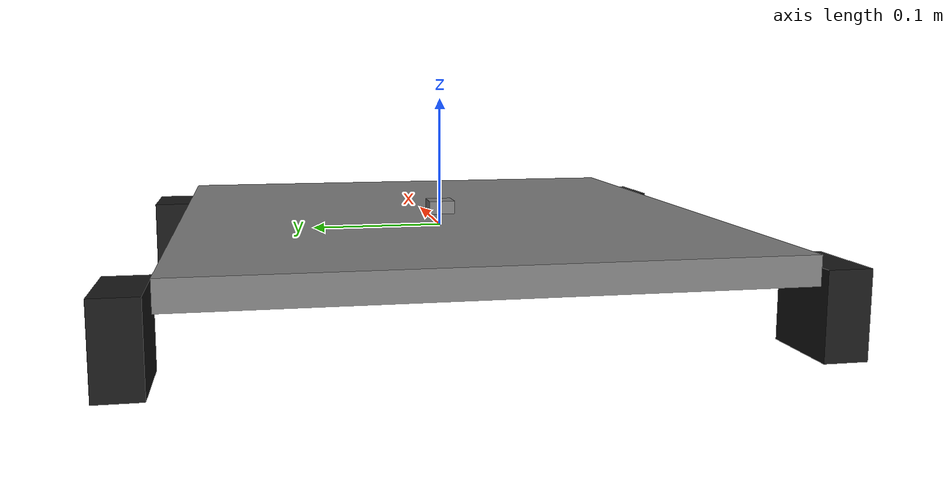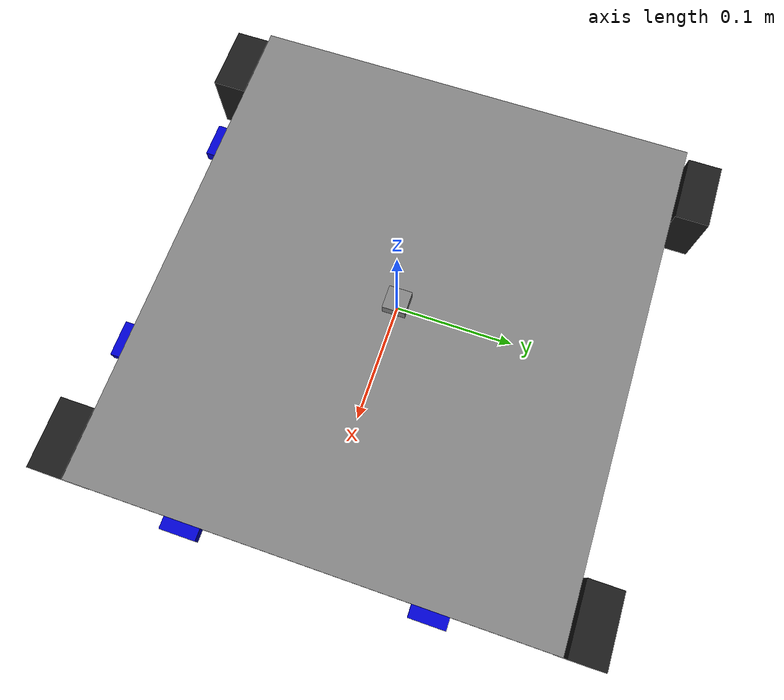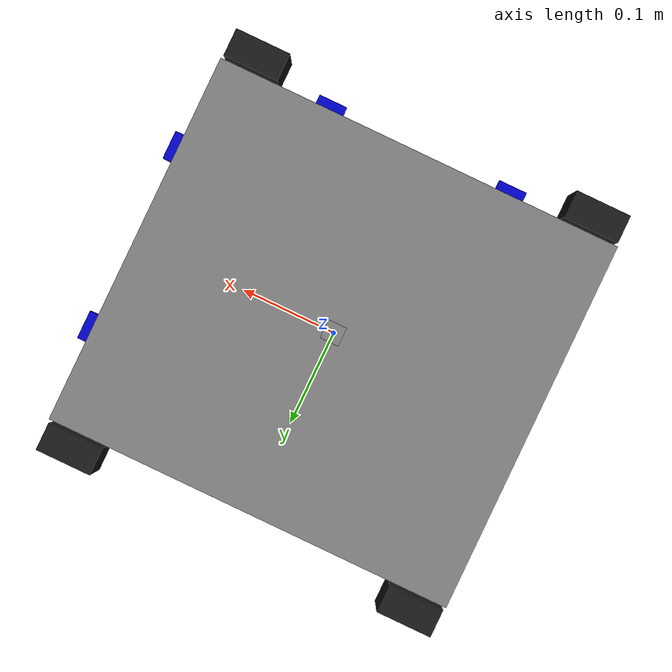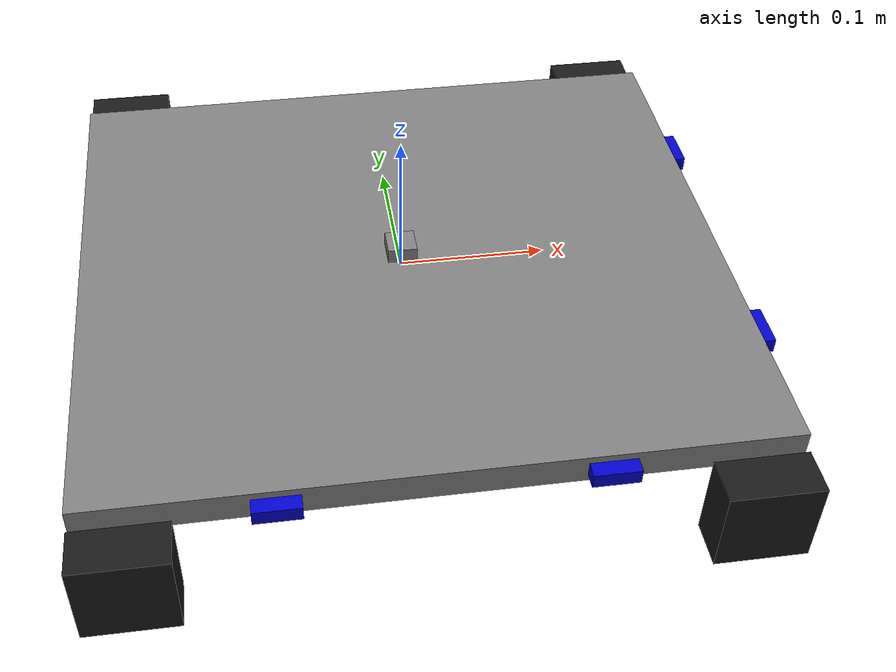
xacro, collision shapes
<?xml version="1.0"?>
<robot xmlns:xacro="http://www.ros.org/wiki/xacro" name="flat_bot">
    <xacro:include filename="common.xacro"/>
    <xacro:include filename="body/flat_bot.xacro"/>
    <xacro:flat_bot/>

    <xacro:include filename="gazebo.xacro"/>

    <xacro:luna prefix="luna_1"/>
    <xacro:luna prefix="luna_2"/>
    <xacro:luna prefix="luna_3"/>
    <xacro:luna prefix="luna_4"/>

</robot>

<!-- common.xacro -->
<robot xmlns:xacro="http://www.ros.org/wiki/xacro" name="r2">

<material name="darkgrey">
    <color rgba="0.1 0.1 0.1 1.0" />
</material>
<material name="grey">
    <color rgba="0.5 0.5 0.5 1.0" />
</material>
<material name="blue">
    <color rgba="0.0 0.0 0.8 1.0" />
</material>

<material name="silver">
    <color rgba="0.700 0.700 0.700 1.000"/>
  </material>

  <material name="black">
    <color rgba="0 0 0 1"/>
  </material>

  <gazebo reference="base_link">
    <material>Gazebo/Grey</material>
  </gazebo>

  <gazebo reference="wheel_fl_1">
    <material>Gazebo/Black</material>
  </gazebo>

  <gazebo reference="wheel_bl_1">
    <material>Gazebo/Black</material>
  </gazebo>

  <gazebo reference="wheel_fr_1">
    <material>Gazebo/Black</material>
  </gazebo>

  <gazebo reference="wheel_br_1">
    <material>Gazebo/Black</material>
  </gazebo>

  <gazebo reference="lidar_lf_1">
    <material>Gazebo/Silver</material>
  </gazebo>

  <gazebo reference="lidar_lb_1">
    <material>Gazebo/Silver</material>
  </gazebo>

  <gazebo reference="luna_fl">
    <material>Gazebo/Silver</material>
  </gazebo>

  <gazebo reference="luna_fr">
    <material>Gazebo/Silver</material>
  </gazebo>

  <gazebo reference="luna_rf">
    <material>Gazebo/Silver</material>
  </gazebo>

  <gazebo reference="luna_rb">
    <material>Gazebo/Silver</material>
  </gazebo>

  <gazebo reference="lift_1">
    <material>Gazebo/Turquoise</material>
  </gazebo>

  <gazebo reference="claw_left_1">
    <material>Gazebo/Turquoise</material>
  </gazebo>

  <gazebo reference="claw_right_1">
    <material>Gazebo/Turquoise</material>
  </gazebo>

<xacro:property name="M_PI" value="3.1415926535897931" />
<xacro:property name="PI" value="3.1415926535897931" />
<xacro:property name="M_PI_2" value="1.570796327" />
<xacro:property name="DEG_TO_RAD" value="0.017453293" />

<xacro:property name="base_size_x" value="0.44" />
<xacro:property name="base_size_y" value="0.40" />
<xacro:property name="base_size_z" value="0.02" />
<xacro:property name="base_mass" value="1.000" />

<xacro:property name="wheel_radius" value="0.03" />
<xacro:property name="wheel_width" value="0.03" />
<xacro:property name="wheel_offset_x" value="0.19"/>
<xacro:property name="wheel_offset_y" value="0.22"/>
<xacro:property name="wheel_offset_z" value="-0.03"/>
<xacro:property name="wheel_mass" value="0.500"/>

<xacro:property name="sensor_size_x" value="0.02" />
<xacro:property name="sensor_size_y" value="0.03" />
<xacro:property name="sensor_size_z" value="0.01" />
<xacro:property name="sensor_mass" value="0.100" />

<xacro:macro name="box_inertia" params="m x y z">
    <inertia ixx="${m*(y*y+z*z)/12}" ixy="0" ixz="0"
            iyy="${m*(x*x+z*z)/12}" iyz="0"
            izz="${m*(x*x+z*z)/12}"
    />
</xacro:macro>

<xacro:macro name="cylinder_inertia" params="m r w">
    <inertia ixx="${m*(3*r*r+w*w)/12}" ixy="0" ixz="0"
            iyy="${m*(3*r*r+w*w)/12}" iyz="0"
            izz="${m*r*r/2}"
    />
</xacro:macro>

</robot>

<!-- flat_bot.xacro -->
<robot xmlns:xacro="http://www.ros.org/wiki/xacro" name="flat_bot">
    <xacro:macro name="flat_bot">

        <link name="base_footprint" />

        <joint name="base_joint" type="fixed">
            <parent link="base_footprint" />
            <child link="base_link" />
            <origin xyz="0 0 0" rpy="0 0 0" />
        </joint>

        <link name="base_link">
            <visual>
                <origin xyz="0 0 0" rpy="0 0 0" />
                <geometry>
                <box size="${base_size_x} ${base_size_y} ${base_size_z}" />
                </geometry>
                <material name="grey" />
            </visual>
            <collision>
                <origin xyz="0 0 0" rpy="0 0 0" />
                <geometry>
                <box size="${base_size_x} ${base_size_y} ${base_size_z}" />
                </geometry>
            </collision>
            <inertial>
                <origin xyz="0.0 0.0 0.0" rpy="0.0 0.0 0.0"/>
                <mass value="${base_mass}"/>
                <xacro:box_inertia m="${base_mass}" x="${base_size_x}" y="${base_size_y}" z="${base_size_z}"/>
            </inertial>
            </link>

            <joint name="fl_wheel_joint" type="fixed">
                <parent link="base_link"/>
                <child link="fl_wheel_link"/>
                <origin xyz="${-wheel_offset_x} ${-wheel_offset_y} ${wheel_offset_z}" rpy="0 0 ${-M_PI/2}" />
            </joint>

            <link name="fl_wheel_link">
            <visual>
                <origin xyz="0 0 0" rpy="0 0 0" />
                <geometry>

                <mesh filename="$(find r2_description)/meshes/fl_wheel_link.STL" scale="0.6 0.6 0.6" />
                </geometry>
                <material name="darkgrey" />
            </visual>
            <collision>
                <origin xyz="0 0 0" rpy="0 0 0" />
                <geometry>
                <box size="${wheel_width} ${wheel_radius*2} ${wheel_radius*2}" />
                </geometry>
            </collision>
            <inertial>
                <origin xyz="0 0 0" rpy="0 0 0" />
                <mass value="${wheel_mass}" />
                <xacro:cylinder_inertia m="${wheel_mass}" r="${wheel_radius}" w="${wheel_width}" />
            </inertial>
        </link>

        <joint name="fr_wheel_joint" type="fixed">
            <parent link="base_link"/>
            <child link="fr_wheel_link"/>
            <origin xyz="${-wheel_offset_x} ${wheel_offset_y} ${wheel_offset_z}" rpy="0 0 ${M_PI/2}" />
        </joint>

        <link name="fr_wheel_link">
            <visual>
                <origin xyz="0 0 0" rpy="0 0 0" />
                <geometry>
                <mesh filename="$(find r2_description)/meshes/fr_wheel_link.STL" scale="0.6 0.6 0.6" />
                </geometry>
                <material name="darkgrey" />
            </visual>
            <collision>
                <origin xyz="0 0 0" rpy="0 0 0" />
                <geometry>
                <box size="${wheel_width} ${wheel_radius*2} ${wheel_radius*2}" />
                </geometry>
            </collision>
            <inertial>
                <origin xyz="0 0 0" rpy="0 0 0" />
                <mass value="${wheel_mass}" />
                <xacro:cylinder_inertia m="${wheel_mass}" r="${wheel_radius}" w="${wheel_width}" />
            </inertial>
            </link>

            <joint name="rl_wheel_joint" type="fixed">
                <parent link="base_link"/>
                <child link="rl_wheel_link"/>
                <origin xyz="${wheel_offset_x} ${-wheel_offset_y} ${wheel_offset_z}" rpy="0 0 ${-M_PI/2}" />
            </joint>

            <link name="rl_wheel_link">
            <visual>
                <origin xyz="0 0 0" rpy="0 0 0" />
                <geometry>
                <mesh filename="$(find r2_description)/meshes/rl_wheel_link.STL" scale="0.6 0.6 0.6" />
                </geometry>
                <material name="darkgrey" />
            </visual>
            <collision>
                <origin xyz="0 0 0" rpy="0 0 0" />
                <geometry>
                <box size="${wheel_width} ${wheel_radius*2} ${wheel_radius*2}" />
                </geometry>
            </collision>
            <inertial>
                <origin xyz="0 0 0" rpy="0 0 0" />
                <mass value="${wheel_mass}" />
                <xacro:cylinder_inertia m="${wheel_mass}" r="${wheel_radius}" w="${wheel_width}" />
            </inertial>
            </link>

            <joint name="rr_wheel_joint" type="fixed">
                <parent link="base_link"/>
                <child link="rr_wheel_link"/>
                <origin xyz="${wheel_offset_x} ${wheel_offset_y} ${wheel_offset_z}" rpy="0 0 ${M_PI/2}" />
            </joint>
            <link name="rr_wheel_link">
            <visual>
                <origin xyz="0 0 0" rpy="0 0 0" />
                <geometry>
                <mesh filename="$(find r2_description)/meshes/rr_wheel_link.STL" scale="0.6 0.6 0.6" />
                </geometry>
                <material name="darkgrey" />
            </visual>
            <collision>
                <origin xyz="0 0 0" rpy="0 0 0" />
                <geometry>
                <box size="${wheel_width} ${wheel_radius*2} ${wheel_radius*2}" />
                </geometry>
            </collision>
            <inertial>
                <origin xyz="0 0 0" rpy="0 0 0" />
                <mass value="${wheel_mass}" />
                <xacro:cylinder_inertia m="${wheel_mass}" r="${wheel_radius}" w="${wheel_width}" />
            </inertial>
        </link>

        <joint name="luna_1_joint" type="fixed">
            <parent link="base_link" />
            <child link="luna_1" />
            <origin xyz="0.22 0.1 0" rpy="0 0 0" />
        </joint>

        <link name="luna_1">
            <visual>
                <origin xyz="0 0 0" rpy="0 0 0" />
                <geometry>
                <box size="${sensor_size_x} ${sensor_size_y} ${sensor_size_z}" />
                </geometry>
                <material name="blue" />
            </visual>
            <collision>
                <origin xyz="0 0 0" rpy="0 0 0" />
                <geometry>
                <box size="${sensor_size_x} ${sensor_size_y} ${sensor_size_z}" />
                </geometry>
            </collision>
            <inertial>
                <origin xyz="0.0 0.0 0.0" rpy="0.0 0.0 0.0"/>
                <mass value="${sensor_mass}"/>
                <xacro:box_inertia m="${sensor_mass}" x="${sensor_size_x}" y="${sensor_size_y}" z="${sensor_size_z}"/>
            </inertial>
            </link>

            <joint name="luna_2_joint" type="fixed">
                <parent link="base_link" />
                <child link="luna_2" />
                <origin xyz="0.22 -0.1 0" rpy="0 0 0" />
            </joint>

            <link name="luna_2">
            <visual>
                <origin xyz="0 0 0" rpy="0 0 0" />
                <geometry>
                <box size="${sensor_size_x} ${sensor_size_y} ${sensor_size_z}" />
                </geometry>
                <material name="blue" />
            </visual>
            <collision>
                <origin xyz="0 0 0" rpy="0 0 0" />
                <geometry>
                <box size="${sensor_size_x} ${sensor_size_y} ${sensor_size_z}" />
                </geometry>
            </collision>
            <inertial>
                <origin xyz="0.0 0.0 0.0" rpy="0.0 0.0 0.0"/>
                <mass value="${sensor_mass}"/>
                <xacro:box_inertia m="${sensor_mass}" x="${sensor_size_x}" y="${sensor_size_y}" z="${sensor_size_z}"/>
            </inertial>
        </link>

        <joint name="luna_3_joint" type="fixed">
            <parent link="base_link" />
            <child link="luna_3" />
            <origin xyz="0.1 -0.2 0" rpy="0 0 ${-M_PI/2}" />
        </joint>

        <link name = "luna_3">
            <visual>
                <origin xyz="0 0 0" rpy="0 0 0" />
                <geometry>
                <box size="${sensor_size_x} ${sensor_size_y} ${sensor_size_z}" />
                </geometry>
                <material name="blue" />
            </visual>
            <collision>
                <origin xyz="0 0 0" rpy="0 0 0" />
                <geometry>
                <box size="${sensor_size_x} ${sensor_size_y} ${sensor_size_z}" />
                </geometry>
            </collision>
            <inertial>
                <origin xyz="0.0 0.0 0.0" rpy="0.0 0.0 0.0"/>
                <mass value="${sensor_mass}"/>
                <xacro:box_inertia m="${sensor_mass}" x="${sensor_size_x}" y="${sensor_size_y}" z="${sensor_size_z}"/>
            </inertial>
        </link>

        <joint name="luna_4_joint" type="fixed">
            <parent link="base_link" />
            <child link="luna_4" />
            <origin xyz="-0.1 -0.2 0" rpy="0 0 ${-M_PI/2}" />
        </joint>

        <link name = "luna_4">
            <visual>
                <origin xyz="0 0 0" rpy="0 0 0" />
                <geometry>
                <box size="${sensor_size_x} ${sensor_size_y} ${sensor_size_z}" />
                </geometry>
                <material name="blue" />
            </visual>
            <collision>
                <origin xyz="0 0 0" rpy="0 0 0" />
                <geometry>
                <box size="${sensor_size_x} ${sensor_size_y} ${sensor_size_z}" />
                </geometry>
            </collision>
            <inertial>
                <origin xyz="0.0 0.0 0.0" rpy="0.0 0.0 0.0"/>
                <mass value="${sensor_mass}"/>
                <xacro:box_inertia m="${sensor_mass}" x="${sensor_size_x}" y="${sensor_size_y}" z="${sensor_size_z}"/>
            </inertial>
        </link>

        <!-- IMU LINK AT CENTER OF ROBOT -->
    <joint name="imu_joint" type="fixed">
        <parent link="base_link" />
        <child link="imu_link" />
        <origin xyz="0 0 0.01" rpy="0 0 0" />
    </joint>

    <link name="imu_link">
        <visual>
            <origin xyz="0 0 0" rpy="0 0 0" />
            <geometry>
                <box size="0.02 0.02 0.02" />
            </geometry>
            <material name="grey" />
        </visual>
        <collision>
            <origin xyz="0 0 0" rpy="0 0 0" />
            <geometry>
                <box size="0.02 0.02 0.02" />
            </geometry>
        </collision>
        <inertial>
        <origin xyz="0.0 0.0 0.0" rpy="0.0 0.0 0.0"/>
        <mass value="0.100"/>
        <xacro:box_inertia m="0.100" x="0.02" y="0.02" z="0.02"/>
        </inertial>
  </link>

    </xacro:macro>
</robot>
